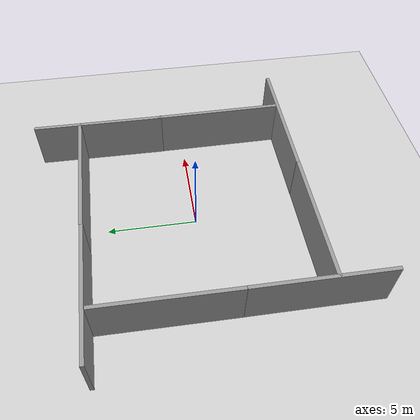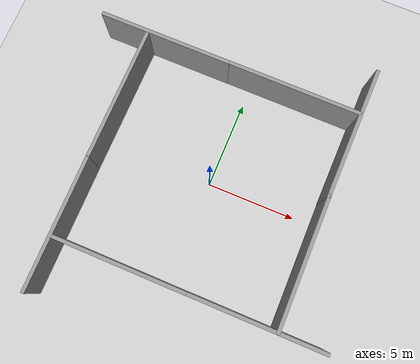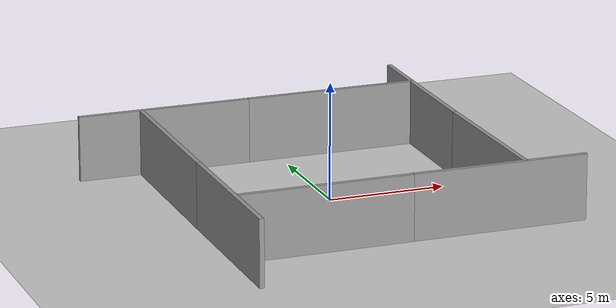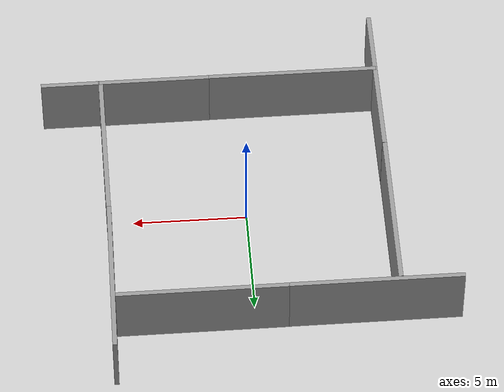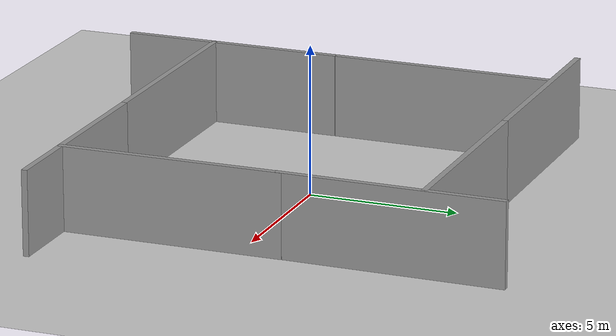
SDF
<sdf version="1.6">
 <world name="default">
  <light name="sun" type="directional">
   <pose>0 0 10 0 -0 0</pose>
   <diffuse>0.8 0.8 0.8 1</diffuse>
   <specular>0.2 0.2 0.2 1</specular>
   <attenuation>
    <range>1000</range>
    <constant>0.9</constant>
    <linear>0.01</linear>
    <quadratic>0.001</quadratic>
   </attenuation>
   <direction>-0.5 0.1 -0.9</direction>
  </light>
  <model name="ground_plane">
   <static>1</static>
   <link name="link">
    <collision name="collision">
     <geometry><plane><normal>0 0 1</normal><size>100 100</size></plane></geometry>
     <surface><friction><ode><mu>100</mu><mu2>50</mu2></ode></friction></surface>
    </collision>
    <visual name="visual">
     <cast_shadows>0</cast_shadows>
     <geometry><plane><normal>0 0 1</normal><size>100 100</size></plane></geometry>
     <material>
      <script><uri>file://media/materials/scripts/gazebo.material</uri><name>Gazebo/Grey</name></script>
     </material>
    </visual>
    <velocity_decay><linear>0</linear><angular>0</angular></velocity_decay>
   </link>
  </model>
  <physics name="default_physics" default="0" type="ode">
   <max_step_size>0.01</max_step_size>
   <real_time_factor>4</real_time_factor>
   <real_time_update_rate>400</real_time_update_rate>
  </physics>
  <scene><ambient>0.4 0.4 0.4 1</ambient><background>0.7 0.7 0.7 1</background><shadows>1</shadows></scene>
  <spherical_coordinates>
   <surface_model>EARTH_WGS84</surface_model>
   <latitude_deg>0</latitude_deg>
   <longitude_deg>0</longitude_deg>
   <elevation>0</elevation>
   <heading_deg>0</heading_deg>
  </spherical_coordinates>
  <model name="grey_wall">
   <static>1</static>
   <link name="link">
    <pose>0 0 1.4 0 -0 0</pose>
    <collision name="collision"><geometry><box><size>7.5 0.2 2.8</size></box></geometry></collision>
    <visual name="visual">
     <cast_shadows>0</cast_shadows>
     <geometry><box><size>7.5 0.2 2.8</size></box></geometry>
     <material>
      <script>
       <uri>model://grey_wall/materials/scripts</uri>
       <uri>model://grey_wall/materials/textures</uri>
       <name>vrc/grey_wall</name>
      </script>
     </material>
    </visual>
    <velocity_decay><linear>0</linear><angular>0</angular></velocity_decay>
   </link>
   <pose>-5.13432 6.07996 0 0 -0 0</pose>
  </model>
  <model name="grey_wall_0">
   <static>1</static>
   <link name="link">
    <pose>0 0 1.4 0 -0 0</pose>
    <collision name="collision"><geometry><box><size>7.5 0.2 2.8</size></box></geometry></collision>
    <visual name="visual">
     <cast_shadows>0</cast_shadows>
     <geometry><box><size>7.5 0.2 2.8</size></box></geometry>
     <material>
      <script>
       <uri>model://grey_wall/materials/scripts</uri>
       <uri>model://grey_wall/materials/textures</uri>
       <name>vrc/grey_wall</name>
      </script>
     </material>
    </visual>
    <velocity_decay><linear>0</linear><angular>0</angular></velocity_decay>
   </link>
   <pose>2.34836 6.08753 0 0 -0 0</pose>
  </model>
  <model name="grey_wall_3">
   <static>1</static>
   <link name="link">
    <pose>0 0 1.4 0 -0 0</pose>
    <collision name="collision"><geometry><box><size>7.5 0.2 2.8</size></box></geometry></collision>
    <visual name="visual">
     <cast_shadows>0</cast_shadows>
     <geometry><box><size>7.5 0.2 2.8</size></box></geometry>
     <material>
      <script>
       <uri>model://grey_wall/materials/scripts</uri>
       <uri>model://grey_wall/materials/textures</uri>
       <name>vrc/grey_wall</name>
      </script>
     </material>
    </visual>
    <velocity_decay><linear>0</linear><angular>0</angular></velocity_decay>
   </link>
   <pose>-2.49998 -5.96009 0 0 -0 0</pose>
  </model>
  <model name="grey_wall_4">
   <static>1</static>
   <link name="link">
    <pose>0 0 1.4 0 -0 0</pose>
    <collision name="collision"><geometry><box><size>7.5 0.2 2.8</size></box></geometry></collision>
    <visual name="visual">
     <cast_shadows>0</cast_shadows>
     <geometry><box><size>7.5 0.2 2.8</size></box></geometry>
     <material>
      <script>
       <uri>model://grey_wall/materials/scripts</uri>
       <uri>model://grey_wall/materials/textures</uri>
       <name>vrc/grey_wall</name>
      </script>
     </material>
    </visual>
    <velocity_decay><linear>0</linear><angular>0</angular></velocity_decay>
   </link>
   <pose>4.99925 -5.95107 0 0 -0 0</pose>
  </model>
  <model name="grey_wall_5">
   <static>1</static>
   <link name="link">
    <pose>0 0 1.4 0 -0 0</pose>
    <collision name="collision"><geometry><box><size>7.5 0.2 2.8</size></box></geometry></collision>
    <visual name="visual">
     <cast_shadows>0</cast_shadows>
     <geometry><box><size>7.5 0.2 2.8</size></box></geometry>
     <material>
      <script>
       <uri>model://grey_wall/materials/scripts</uri>
       <uri>model://grey_wall/materials/textures</uri>
       <name>vrc/grey_wall</name>
      </script>
     </material>
    </visual>
    <velocity_decay><linear>0</linear><angular>0</angular></velocity_decay>
   </link>
   <pose>6.07625 4.9821 0 0 0 -1.58058</pose>
  </model>
  <model name="grey_wall_6">
   <static>1</static>
   <link name="link">
    <pose>0 0 1.4 0 -0 0</pose>
    <collision name="collision"><geometry><box><size>7.5 0.2 2.8</size></box></geometry></collision>
    <visual name="visual">
     <cast_shadows>0</cast_shadows>
     <geometry><box><size>7.5 0.2 2.8</size></box></geometry>
     <material>
      <script>
       <uri>model://grey_wall/materials/scripts</uri>
       <uri>model://grey_wall/materials/textures</uri>
       <name>vrc/grey_wall</name>
      </script>
     </material>
    </visual>
    <velocity_decay><linear>0</linear><angular>0</angular></velocity_decay>
   </link>
   <pose>6.06959 -2.28477 0 0 0 -1.566</pose>
  </model>
  <model name="grey_wall_8">
   <static>1</static>
   <link name="link">
    <pose>0 0 1.4 0 -0 0</pose>
    <collision name="collision"><geometry><box><size>7.5 0.2 2.8</size></box></geometry></collision>
    <visual name="visual">
     <cast_shadows>0</cast_shadows>
     <geometry><box><size>7.5 0.2 2.8</size></box></geometry>
     <material>
      <script>
       <uri>model://grey_wall/materials/scripts</uri>
       <uri>model://grey_wall/materials/textures</uri>
       <name>vrc/grey_wall</name>
      </script>
     </material>
    </visual>
    <velocity_decay><linear>0</linear><angular>0</angular></velocity_decay>
   </link>
   <pose>-6.17497 2.22209 0 0 0 -1.57839</pose>
  </model>
  <model name="grey_wall_9">
   <static>1</static>
   <link name="link">
    <pose>0 0 1.4 0 -0 0</pose>
    <collision name="collision"><geometry><box><size>7.5 0.2 2.8</size></box></geometry></collision>
    <visual name="visual">
     <cast_shadows>0</cast_shadows>
     <geometry><box><size>7.5 0.2 2.8</size></box></geometry>
     <material>
      <script>
       <uri>model://grey_wall/materials/scripts</uri>
       <uri>model://grey_wall/materials/textures</uri>
       <name>vrc/grey_wall</name>
      </script>
     </material>
    </visual>
    <velocity_decay><linear>0</linear><angular>0</angular></velocity_decay>
   </link>
   <pose>-6.20985 -5.2862 0 0 0 -1.57362</pose>
  </model>
  <gravity>0 0 -9.8</gravity>
  <magnetic_field>6e-06 2.3e-05 -4.2e-05</magnetic_field>
  <atmosphere type="adiabatic"/>
 </world>
</sdf>
